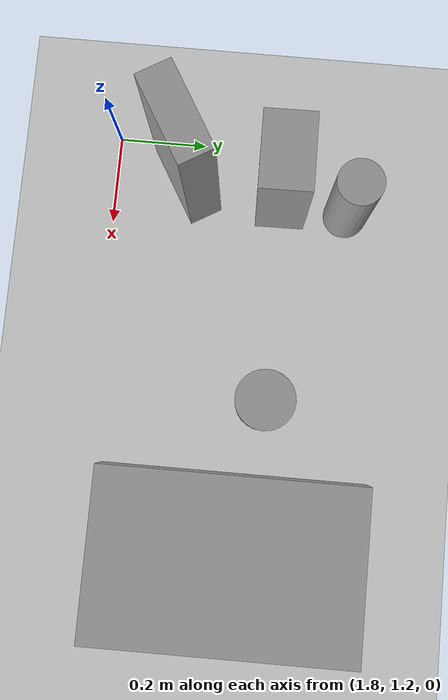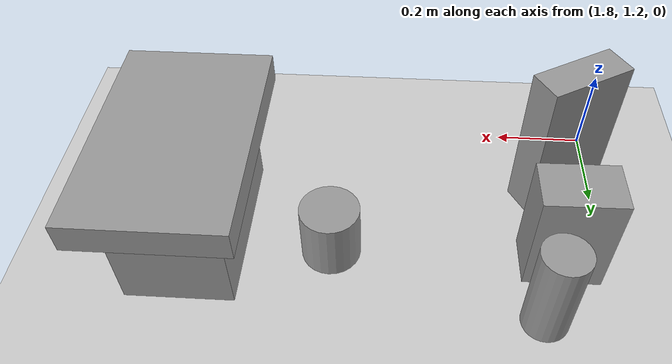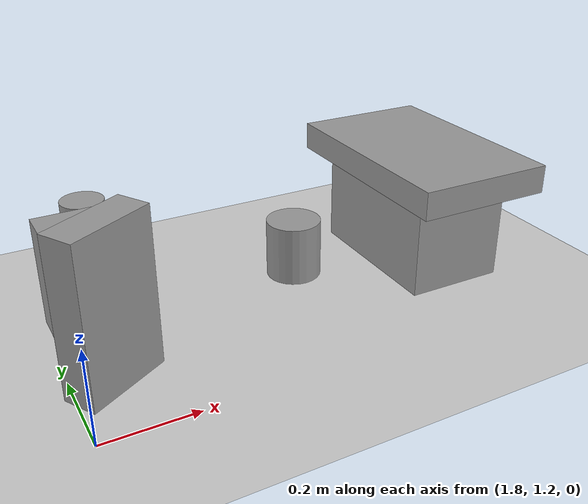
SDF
<sdf version="1.6">
 <world name="default">
  <light name="sun" type="directional">
   <pose>0 0 10 0 -0 0</pose>
   <diffuse>0.8 0.8 0.8 1</diffuse>
   <specular>0.1 0.1 0.1 1</specular>
   <attenuation>
    <range>1000</range>
    <constant>0.9</constant>
    <linear>0.01</linear>
    <quadratic>0.001</quadratic>
   </attenuation>
   <direction>-0.5 0.5 -1</direction>
  </light>
  <model name="ground_plane">
   <static>1</static>
   <link name="link">
    <collision name="collision">
     <geometry><plane><normal>0 0 1</normal><size>100 100</size></plane></geometry>
     <surface><friction><ode><mu>100</mu><mu2>50</mu2></ode></friction></surface>
    </collision>
    <visual name="visual">
     <cast_shadows>0</cast_shadows>
     <geometry><plane><normal>0 0 1</normal><size>100 100</size></plane></geometry>
     <material>
      <script><uri>file://media/materials/scripts/gazebo.material</uri><name>Gazebo/Grey</name></script>
     </material>
    </visual>
   </link>
  </model>
  <gravity>0 0 -9.8</gravity>
  <magnetic_field>6e-06 2.3e-05 -4.2e-05</magnetic_field>
  <atmosphere type="adiabatic"/>
  <physics name="default_physics" default="0" type="ode">
   <max_step_size>0.001</max_step_size>
   <real_time_factor>1</real_time_factor>
   <real_time_update_rate>1000</real_time_update_rate>
  </physics>
  <scene><ambient>0.4 0.4 0.4 1</ambient><background>0.7 0.7 0.7 1</background><shadows>1</shadows></scene>
  <spherical_coordinates>
   <surface_model>EARTH_WGS84</surface_model>
   <latitude_deg>0</latitude_deg>
   <longitude_deg>0</longitude_deg>
   <elevation>0</elevation>
   <heading_deg>0</heading_deg>
  </spherical_coordinates>
  <model name="unit_box_1">
   <pose>1.8863 1.36701 0.168501 0.000362 3.7e-05 0.52943</pose>
   <link name="link">
    <inertial>
     <mass>1</mass>
     <inertia>
      <ixx>0.166667</ixx>
      <ixy>0</ixy>
      <ixz>0</ixz>
      <iyy>0.166667</iyy>
      <iyz>0</iyz>
      <izz>0.166667</izz>
     </inertia>
    </inertial>
    <collision name="collision">
     <geometry><box><size>0.194033 0.077038 0.355229</size></box></geometry>
    </collision>
    <visual name="visual">
     <geometry><box><size>0.194033 0.077038 0.355229</size></box></geometry>
     <material>
      <script><name>Gazebo/Grey</name><uri>file://media/materials/scripts/gazebo.material</uri></script>
     </material>
    </visual>
   </link>
  </model>
  <model name="unit_box_2">
   <pose>1.89758 1.58607 0.121765 -1.3e-05 -8.9e-05 0.012121</pose>
   <link name="link">
    <inertial>
     <mass>1</mass>
     <inertia>
      <ixx>0.166667</ixx>
      <ixy>0</ixy>
      <ixz>0</ixz>
      <iyy>0.166667</iyy>
      <iyz>0</iyz>
      <izz>0.166667</izz>
     </inertia>
    </inertial>
    <collision name="collision"><geometry><box><size>0.167065 0.1121 0.247538</size></box></geometry></collision>
    <visual name="visual">
     <geometry><box><size>0.167065 0.1121 0.247538</size></box></geometry>
     <material>
      <script><name>Gazebo/Grey</name><uri>file://media/materials/scripts/gazebo.material</uri></script>
     </material>
    </visual>
   </link>
  </model>
  <model name="unit_cylinder_0">
   <pose>1.94294 1.73781 0.111414 -0.000336 0.000254 0.017865</pose>
   <link name="link">
    <inertial>
     <mass>1</mass>
     <inertia><ixx>0.145833</ixx><ixy>0</ixy><ixz>0</ixz><iyy>0.145833</iyy><iyz>0</iyz><izz>0.125</izz></inertia>
    </inertial>
    <collision name="collision">
     <geometry><cylinder><radius>0.0497745</radius><length>0.224374</length></cylinder></geometry>
    </collision>
    <visual name="visual">
     <geometry><cylinder><radius>0.0497745</radius><length>0.224374</length></cylinder></geometry>
     <material>
      <script><name>Gazebo/Grey</name><uri>file://media/materials/scripts/gazebo.material</uri></script>
     </material>
    </visual>
   </link>
  </model>
  <model name="unit_cylinder_1">
   <pose>2.39162 1.58442 0.069562 0 -0 0</pose>
   <link name="link">
    <inertial>
     <mass>1</mass>
     <inertia><ixx>0.145833</ixx><ixy>0</ixy><ixz>0</ixz><iyy>0.145833</iyy><iyz>0</iyz><izz>0.125</izz></inertia>
    </inertial>
    <collision name="collision">
     <geometry><cylinder><radius>0.0643375</radius><length>0.139125</length></cylinder></geometry>
    </collision>
    <visual name="visual">
     <geometry><cylinder><radius>0.0643375</radius><length>0.139125</length></cylinder></geometry>
     <material>
      <script><name>Gazebo/Grey</name><uri>file://media/materials/scripts/gazebo.material</uri></script>
     </material>
    </visual>
   </link>
  </model>
  <model name="unit_box_3">
   <pose>2.69786 1.53855 0.113842 0 0 -0.000227</pose>
   <link name="link">
    <inertial>
     <mass>1</mass>
     <inertia>
      <ixx>0.166667</ixx>
      <ixy>0</ixy>
      <ixz>0</ixz>
      <iyy>0.166667</iyy>
      <iyz>0</iyz>
      <izz>0.166667</izz>
     </inertia>
    </inertial>
    <collision name="collision">
     <geometry><box><size>0.233423 0.376435 0.227683</size></box></geometry>
    </collision>
    <visual name="visual">
     <geometry><box><size>0.233423 0.376435 0.227683</size></box></geometry>
     <material>
      <script><name>Gazebo/Grey</name><uri>file://media/materials/scripts/gazebo.material</uri></script>
     </material>
    </visual>
   </link>
  </model>
  <model name="unit_box_4_0">
   <pose>2.69981 1.53193 0.259929 1e-05 -3.6e-05 -3.7e-05</pose>
   <link name="link">
    <inertial>
     <mass>1</mass>
     <inertia>
      <ixx>0.166667</ixx>
      <ixy>0</ixy>
      <ixz>0</ixz>
      <iyy>0.166667</iyy>
      <iyz>0</iyz>
      <izz>0.166667</izz>
     </inertia>
    </inertial>
    <collision name="collision">
     <geometry><box><size>0.320579 0.506932 0.064487</size></box></geometry>
    </collision>
    <visual name="visual">
     <geometry><box><size>0.320579 0.506932 0.064487</size></box></geometry>
     <material>
      <script><name>Gazebo/Grey</name><uri>file://media/materials/scripts/gazebo.material</uri></script>
     </material>
    </visual>
   </link>
  </model>
 </world>
</sdf>
